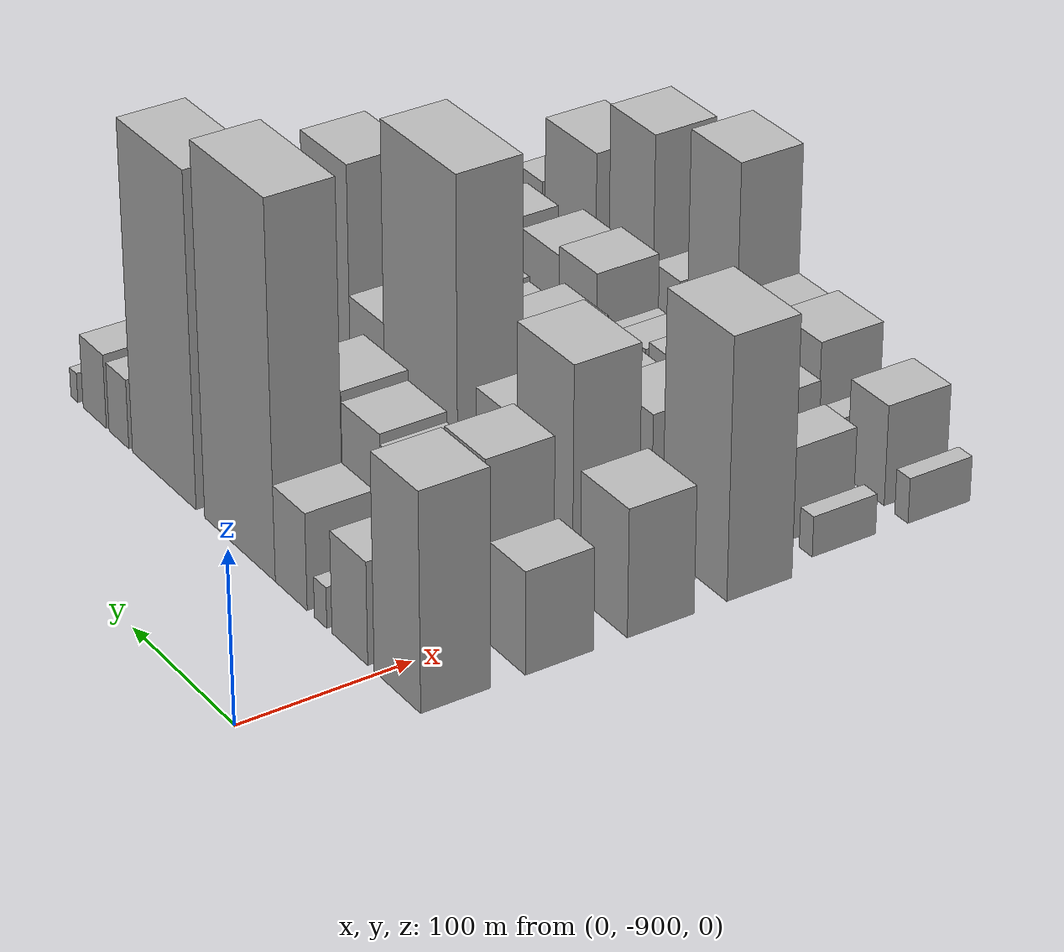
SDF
<sdf version="1.6">
 <world name="default">
  <model name="building_1">
   <static>1</static>
   <pose>100.0000 -918.5534 0 0.000000 0.000000 0.000000</pose>
   <link name="link">
    <pose>0 0 63.00 0 0 0</pose>
    <collision name="collision"><geometry><box><size>40.0000 42.8932 126.0000</size></box></geometry></collision>
    <visual name="visual">
     <cast_shadows>0</cast_shadows>
     <geometry><box><size>40.0000 42.8932 126.0000</size></box></geometry>
     <material>
      <script>
       <uri>model://HANNAS_wall/materials/scripts</uri>
       <uri>model://HANNAS_wall/materials/textures</uri>
       <name>vrc/HANNAS_wall</name>
      </script>
     </material>
    </visual>
   </link>
  </model>
  <model name="building_2">
   <static>1</static>
   <pose>100.0000 -874.1622 0 0.000000 0.000000 0.000000</pose>
   <link name="link">
    <pose>0 0 30.00 0 0 0</pose>
    <collision name="collision"><geometry><box><size>40.0000 33.8893 60.0000</size></box></geometry></collision>
    <visual name="visual">
     <cast_shadows>0</cast_shadows>
     <geometry><box><size>40.0000 33.8893 60.0000</size></box></geometry>
     <material>
      <script>
       <uri>model://HANNAS_wall/materials/scripts</uri>
       <uri>model://HANNAS_wall/materials/textures</uri>
       <name>vrc/HANNAS_wall</name>
      </script>
     </material>
    </visual>
   </link>
  </model>
  <model name="building_3">
   <static>1</static>
   <pose>100.0000 -846.2349 0 0.000000 0.000000 0.000000</pose>
   <link name="link">
    <pose>0 0 12.00 0 0 0</pose>
    <collision name="collision"><geometry><box><size>40.0000 11.9653 24.0000</size></box></geometry></collision>
    <visual name="visual">
     <cast_shadows>0</cast_shadows>
     <geometry><box><size>40.0000 11.9653 24.0000</size></box></geometry>
     <material>
      <script>
       <uri>model://HANNAS_wall/materials/scripts</uri>
       <uri>model://HANNAS_wall/materials/textures</uri>
       <name>vrc/HANNAS_wall</name>
      </script>
     </material>
    </visual>
   </link>
  </model>
  <model name="building_4">
   <static>1</static>
   <pose>100.0000 -817.5872 0 0.000000 0.000000 0.000000</pose>
   <link name="link">
    <pose>0 0 28.50 0 0 0</pose>
    <collision name="collision"><geometry><box><size>40.0000 31.3300 57.0000</size></box></geometry></collision>
    <visual name="visual">
     <cast_shadows>0</cast_shadows>
     <geometry><box><size>40.0000 31.3300 57.0000</size></box></geometry>
     <material>
      <script>
       <uri>model://HANNAS_wall/materials/scripts</uri>
       <uri>model://HANNAS_wall/materials/textures</uri>
       <name>vrc/HANNAS_wall</name>
      </script>
     </material>
    </visual>
   </link>
  </model>
  <model name="building_5">
   <static>1</static>
   <pose>100.0000 -766.0420 0 0.000000 0.000000 0.000000</pose>
   <link name="link">
    <pose>0 0 109.50 0 0 0</pose>
    <collision name="collision"><geometry><box><size>40.0000 71.7605 219.0000</size></box></geometry></collision>
    <visual name="visual">
     <cast_shadows>0</cast_shadows>
     <geometry><box><size>40.0000 71.7605 219.0000</size></box></geometry>
     <material>
      <script>
       <uri>model://HANNAS_wall/materials/scripts</uri>
       <uri>model://HANNAS_wall/materials/textures</uri>
       <name>vrc/HANNAS_wall</name>
      </script>
     </material>
    </visual>
   </link>
  </model>
  <model name="building_6">
   <static>1</static>
   <pose>100.0000 -687.2929 0 0.000000 0.000000 0.000000</pose>
   <link name="link">
    <pose>0 0 99.00 0 0 0</pose>
    <collision name="collision"><geometry><box><size>40.0000 67.7378 198.0000</size></box></geometry></collision>
    <visual name="visual">
     <cast_shadows>0</cast_shadows>
     <geometry><box><size>40.0000 67.7378 198.0000</size></box></geometry>
     <material>
      <script>
       <uri>model://HANNAS_wall/materials/scripts</uri>
       <uri>model://HANNAS_wall/materials/textures</uri>
       <name>vrc/HANNAS_wall</name>
      </script>
     </material>
    </visual>
   </link>
  </model>
  <model name="building_7">
   <static>1</static>
   <pose>100.0000 -638.5477 0 0.000000 0.000000 0.000000</pose>
   <link name="link">
    <pose>0 0 21.00 0 0 0</pose>
    <collision name="collision"><geometry><box><size>40.0000 21.7526 42.0000</size></box></geometry></collision>
    <visual name="visual">
     <cast_shadows>0</cast_shadows>
     <geometry><box><size>40.0000 21.7526 42.0000</size></box></geometry>
     <material>
      <script>
       <uri>model://HANNAS_wall/materials/scripts</uri>
       <uri>model://HANNAS_wall/materials/textures</uri>
       <name>vrc/HANNAS_wall</name>
      </script>
     </material>
    </visual>
   </link>
  </model>
  <model name="building_8">
   <static>1</static>
   <pose>100.0000 -611.7169 0 0.000000 0.000000 0.000000</pose>
   <link name="link">
    <pose>0 0 22.50 0 0 0</pose>
    <collision name="collision"><geometry><box><size>40.0000 25.9090 45.0000</size></box></geometry></collision>
    <visual name="visual">
     <cast_shadows>0</cast_shadows>
     <geometry><box><size>40.0000 25.9090 45.0000</size></box></geometry>
     <material>
      <script>
       <uri>model://HANNAS_wall/materials/scripts</uri>
       <uri>model://HANNAS_wall/materials/textures</uri>
       <name>vrc/HANNAS_wall</name>
      </script>
     </material>
    </visual>
   </link>
  </model>
  <model name="building_9">
   <static>1</static>
   <pose>100.0000 -588.8372 0 0.000000 0.000000 0.000000</pose>
   <link name="link">
    <pose>0 0 9.00 0 0 0</pose>
    <collision name="collision"><geometry><box><size>40.0000 7.8504 18.0000</size></box></geometry></collision>
    <visual name="visual">
     <cast_shadows>0</cast_shadows>
     <geometry><box><size>40.0000 7.8504 18.0000</size></box></geometry>
     <material>
      <script>
       <uri>model://HANNAS_wall/materials/scripts</uri>
       <uri>model://HANNAS_wall/materials/textures</uri>
       <name>vrc/HANNAS_wall</name>
      </script>
     </material>
    </visual>
   </link>
  </model>
  <model name="building_55">
   <static>1</static>
   <pose>160.0000 -924.2510 0 0.000000 0.000000 0.000000</pose>
   <link name="link">
    <pose>0 0 30.00 0 0 0</pose>
    <collision name="collision"><geometry><box><size>40.0000 31.4981 60.0000</size></box></geometry></collision>
    <visual name="visual">
     <cast_shadows>0</cast_shadows>
     <geometry><box><size>40.0000 31.4981 60.0000</size></box></geometry>
     <material>
      <script>
       <uri>model://HANNAS_wall/materials/scripts</uri>
       <uri>model://HANNAS_wall/materials/textures</uri>
       <name>vrc/HANNAS_wall</name>
      </script>
     </material>
    </visual>
   </link>
  </model>
  <model name="building_56">
   <static>1</static>
   <pose>160.0000 -886.0669 0 0.000000 0.000000 0.000000</pose>
   <link name="link">
    <pose>0 0 52.50 0 0 0</pose>
    <collision name="collision"><geometry><box><size>40.0000 36.8700 105.0000</size></box></geometry></collision>
    <visual name="visual">
     <cast_shadows>0</cast_shadows>
     <geometry><box><size>40.0000 36.8700 105.0000</size></box></geometry>
     <material>
      <script>
       <uri>model://HANNAS_wall/materials/scripts</uri>
       <uri>model://HANNAS_wall/materials/textures</uri>
       <name>vrc/HANNAS_wall</name>
      </script>
     </material>
    </visual>
   </link>
  </model>
  <model name="building_57">
   <static>1</static>
   <pose>160.0000 -855.0341 0 0.000000 0.000000 0.000000</pose>
   <link name="link">
    <pose>0 0 24.00 0 0 0</pose>
    <collision name="collision"><geometry><box><size>40.0000 25.1956 48.0000</size></box></geometry></collision>
    <visual name="visual">
     <cast_shadows>0</cast_shadows>
     <geometry><box><size>40.0000 25.1956 48.0000</size></box></geometry>
     <material>
      <script>
       <uri>model://HANNAS_wall/materials/scripts</uri>
       <uri>model://HANNAS_wall/materials/textures</uri>
       <name>vrc/HANNAS_wall</name>
      </script>
     </material>
    </visual>
   </link>
  </model>
  <model name="building_58">
   <static>1</static>
   <pose>160.0000 -824.1396 0 0.000000 0.000000 0.000000</pose>
   <link name="link">
    <pose>0 0 31.50 0 0 0</pose>
    <collision name="collision"><geometry><box><size>40.0000 36.5934 63.0000</size></box></geometry></collision>
    <visual name="visual">
     <cast_shadows>0</cast_shadows>
     <geometry><box><size>40.0000 36.5934 63.0000</size></box></geometry>
     <material>
      <script>
       <uri>model://HANNAS_wall/materials/scripts</uri>
       <uri>model://HANNAS_wall/materials/textures</uri>
       <name>vrc/HANNAS_wall</name>
      </script>
     </material>
    </visual>
   </link>
  </model>
  <model name="building_59">
   <static>1</static>
   <pose>160.0000 -787.1878 0 0.000000 0.000000 0.000000</pose>
   <link name="link">
    <pose>0 0 34.50 0 0 0</pose>
    <collision name="collision"><geometry><box><size>40.0000 37.3101 69.0000</size></box></geometry></collision>
    <visual name="visual">
     <cast_shadows>0</cast_shadows>
     <geometry><box><size>40.0000 37.3101 69.0000</size></box></geometry>
     <material>
      <script>
       <uri>model://HANNAS_wall/materials/scripts</uri>
       <uri>model://HANNAS_wall/materials/textures</uri>
       <name>vrc/HANNAS_wall</name>
      </script>
     </material>
    </visual>
   </link>
  </model>
  <model name="building_60">
   <static>1</static>
   <pose>160.0000 -746.8631 0 0.000000 0.000000 0.000000</pose>
   <link name="link">
    <pose>0 0 37.50 0 0 0</pose>
    <collision name="collision"><geometry><box><size>40.0000 43.3393 75.0000</size></box></geometry></collision>
    <visual name="visual">
     <cast_shadows>0</cast_shadows>
     <geometry><box><size>40.0000 43.3393 75.0000</size></box></geometry>
     <material>
      <script>
       <uri>model://HANNAS_wall/materials/scripts</uri>
       <uri>model://HANNAS_wall/materials/textures</uri>
       <name>vrc/HANNAS_wall</name>
      </script>
     </material>
    </visual>
   </link>
  </model>
  <model name="building_61">
   <static>1</static>
   <pose>160.0000 -710.0617 0 0.000000 0.000000 0.000000</pose>
   <link name="link">
    <pose>0 0 25.50 0 0 0</pose>
    <collision name="collision"><geometry><box><size>40.0000 30.2634 51.0000</size></box></geometry></collision>
    <visual name="visual">
     <cast_shadows>0</cast_shadows>
     <geometry><box><size>40.0000 30.2634 51.0000</size></box></geometry>
     <material>
      <script>
       <uri>model://HANNAS_wall/materials/scripts</uri>
       <uri>model://HANNAS_wall/materials/textures</uri>
       <name>vrc/HANNAS_wall</name>
      </script>
     </material>
    </visual>
   </link>
  </model>
  <model name="building_62">
   <static>1</static>
   <pose>160.0000 -678.1317 0 0.000000 0.000000 0.000000</pose>
   <link name="link">
    <pose>0 0 28.50 0 0 0</pose>
    <collision name="collision"><geometry><box><size>40.0000 33.5968 57.0000</size></box></geometry></collision>
    <visual name="visual">
     <cast_shadows>0</cast_shadows>
     <geometry><box><size>40.0000 33.5968 57.0000</size></box></geometry>
     <material>
      <script>
       <uri>model://HANNAS_wall/materials/scripts</uri>
       <uri>model://HANNAS_wall/materials/textures</uri>
       <name>vrc/HANNAS_wall</name>
      </script>
     </material>
    </visual>
   </link>
  </model>
  <model name="building_63">
   <static>1</static>
   <pose>160.0000 -658.0285 0 0.000000 0.000000 0.000000</pose>
   <link name="link">
    <pose>0 0 7.50 0 0 0</pose>
    <collision name="collision"><geometry><box><size>40.0000 6.6095 15.0000</size></box></geometry></collision>
    <visual name="visual">
     <cast_shadows>0</cast_shadows>
     <geometry><box><size>40.0000 6.6095 15.0000</size></box></geometry>
     <material>
      <script>
       <uri>model://HANNAS_wall/materials/scripts</uri>
       <uri>model://HANNAS_wall/materials/textures</uri>
       <name>vrc/HANNAS_wall</name>
      </script>
     </material>
    </visual>
   </link>
  </model>
  <model name="building_64">
   <static>1</static>
   <pose>160.0000 -644.5541 0 0.000000 0.000000 0.000000</pose>
   <link name="link">
    <pose>0 0 18.00 0 0 0</pose>
    <collision name="collision"><geometry><box><size>40.0000 20.3393 36.0000</size></box></geometry></collision>
    <visual name="visual">
     <cast_shadows>0</cast_shadows>
     <geometry><box><size>40.0000 20.3393 36.0000</size></box></geometry>
     <material>
      <script>
       <uri>model://HANNAS_wall/materials/scripts</uri>
       <uri>model://HANNAS_wall/materials/textures</uri>
       <name>vrc/HANNAS_wall</name>
      </script>
     </material>
    </visual>
   </link>
  </model>
  <model name="building_65">
   <static>1</static>
   <pose>160.0000 -616.4208 0 0.000000 0.000000 0.000000</pose>
   <link name="link">
    <pose>0 0 33.00 0 0 0</pose>
    <collision name="collision"><geometry><box><size>40.0000 35.9275 66.0000</size></box></geometry></collision>
    <visual name="visual">
     <cast_shadows>0</cast_shadows>
     <geometry><box><size>40.0000 35.9275 66.0000</size></box></geometry>
     <material>
      <script>
       <uri>model://HANNAS_wall/materials/scripts</uri>
       <uri>model://HANNAS_wall/materials/textures</uri>
       <name>vrc/HANNAS_wall</name>
      </script>
     </material>
    </visual>
   </link>
  </model>
  <model name="building_66">
   <static>1</static>
   <pose>160.0000 -578.4896 0 0.000000 0.000000 0.000000</pose>
   <link name="link">
    <pose>0 0 37.50 0 0 0</pose>
    <collision name="collision"><geometry><box><size>40.0000 39.9348 75.0000</size></box></geometry></collision>
    <visual name="visual">
     <cast_shadows>0</cast_shadows>
     <geometry><box><size>40.0000 39.9348 75.0000</size></box></geometry>
     <material>
      <script>
       <uri>model://HANNAS_wall/materials/scripts</uri>
       <uri>model://HANNAS_wall/materials/textures</uri>
       <name>vrc/HANNAS_wall</name>
      </script>
     </material>
    </visual>
   </link>
  </model>
  <model name="building_110">
   <static>1</static>
   <pose>220.0000 -918.9991 0 0.000000 0.000000 0.000000</pose>
   <link name="link">
    <pose>0 0 37.50 0 0 0</pose>
    <collision name="collision"><geometry><box><size>40.0000 42.0018 75.0000</size></box></geometry></collision>
    <visual name="visual">
     <cast_shadows>0</cast_shadows>
     <geometry><box><size>40.0000 42.0018 75.0000</size></box></geometry>
     <material>
      <script>
       <uri>model://HANNAS_wall/materials/scripts</uri>
       <uri>model://HANNAS_wall/materials/textures</uri>
       <name>vrc/HANNAS_wall</name>
      </script>
     </material>
    </visual>
   </link>
  </model>
  <model name="building_111">
   <static>1</static>
   <pose>220.0000 -865.5196 0 0.000000 0.000000 0.000000</pose>
   <link name="link">
    <pose>0 0 66.00 0 0 0</pose>
    <collision name="collision"><geometry><box><size>40.0000 50.9571 132.0000</size></box></geometry></collision>
    <visual name="visual">
     <cast_shadows>0</cast_shadows>
     <geometry><box><size>40.0000 50.9571 132.0000</size></box></geometry>
     <material>
      <script>
       <uri>model://HANNAS_wall/materials/scripts</uri>
       <uri>model://HANNAS_wall/materials/textures</uri>
       <name>vrc/HANNAS_wall</name>
      </script>
     </material>
    </visual>
   </link>
  </model>
  <model name="building_112">
   <static>1</static>
   <pose>220.0000 -820.8503 0 0.000000 0.000000 0.000000</pose>
   <link name="link">
    <pose>0 0 37.50 0 0 0</pose>
    <collision name="collision"><geometry><box><size>40.0000 38.3815 75.0000</size></box></geometry></collision>
    <visual name="visual">
     <cast_shadows>0</cast_shadows>
     <geometry><box><size>40.0000 38.3815 75.0000</size></box></geometry>
     <material>
      <script>
       <uri>model://HANNAS_wall/materials/scripts</uri>
       <uri>model://HANNAS_wall/materials/textures</uri>
       <name>vrc/HANNAS_wall</name>
      </script>
     </material>
    </visual>
   </link>
  </model>
  <model name="building_113">
   <static>1</static>
   <pose>220.0000 -792.7535 0 0.000000 0.000000 0.000000</pose>
   <link name="link">
    <pose>0 0 15.00 0 0 0</pose>
    <collision name="collision"><geometry><box><size>40.0000 17.8122 30.0000</size></box></geometry></collision>
    <visual name="visual">
     <cast_shadows>0</cast_shadows>
     <geometry><box><size>40.0000 17.8122 30.0000</size></box></geometry>
     <material>
      <script>
       <uri>model://HANNAS_wall/materials/scripts</uri>
       <uri>model://HANNAS_wall/materials/textures</uri>
       <name>vrc/HANNAS_wall</name>
      </script>
     </material>
    </visual>
   </link>
  </model>
  <model name="building_114">
   <static>1</static>
   <pose>220.0000 -747.9325 0 0.000000 0.000000 0.000000</pose>
   <link name="link">
    <pose>0 0 94.50 0 0 0</pose>
    <collision name="collision"><geometry><box><size>40.0000 71.8297 189.0000</size></box></geometry></collision>
    <visual name="visual">
     <cast_shadows>0</cast_shadows>
     <geometry><box><size>40.0000 71.8297 189.0000</size></box></geometry>
     <material>
      <script>
       <uri>model://HANNAS_wall/materials/scripts</uri>
       <uri>model://HANNAS_wall/materials/textures</uri>
       <name>vrc/HANNAS_wall</name>
      </script>
     </material>
    </visual>
   </link>
  </model>
  <model name="building_115">
   <static>1</static>
   <pose>220.0000 -694.6104 0 0.000000 0.000000 0.000000</pose>
   <link name="link">
    <pose>0 0 34.50 0 0 0</pose>
    <collision name="collision"><geometry><box><size>40.0000 34.8145 69.0000</size></box></geometry></collision>
    <visual name="visual">
     <cast_shadows>0</cast_shadows>
     <geometry><box><size>40.0000 34.8145 69.0000</size></box></geometry>
     <material>
      <script>
       <uri>model://HANNAS_wall/materials/scripts</uri>
       <uri>model://HANNAS_wall/materials/textures</uri>
       <name>vrc/HANNAS_wall</name>
      </script>
     </material>
    </visual>
   </link>
  </model>
  <model name="building_116">
   <static>1</static>
   <pose>220.0000 -653.7640 0 0.000000 0.000000 0.000000</pose>
   <link name="link">
    <pose>0 0 73.50 0 0 0</pose>
    <collision name="collision"><geometry><box><size>40.0000 46.8782 147.0000</size></box></geometry></collision>
    <visual name="visual">
     <cast_shadows>0</cast_shadows>
     <geometry><box><size>40.0000 46.8782 147.0000</size></box></geometry>
     <material>
      <script>
       <uri>model://HANNAS_wall/materials/scripts</uri>
       <uri>model://HANNAS_wall/materials/textures</uri>
       <name>vrc/HANNAS_wall</name>
      </script>
     </material>
    </visual>
   </link>
  </model>
  <model name="building_117">
   <static>1</static>
   <pose>220.0000 -614.5843 0 0.000000 0.000000 0.000000</pose>
   <link name="link">
    <pose>0 0 46.50 0 0 0</pose>
    <collision name="collision"><geometry><box><size>40.0000 31.4812 93.0000</size></box></geometry></collision>
    <visual name="visual">
     <cast_shadows>0</cast_shadows>
     <geometry><box><size>40.0000 31.4812 93.0000</size></box></geometry>
     <material>
      <script>
       <uri>model://HANNAS_wall/materials/scripts</uri>
       <uri>model://HANNAS_wall/materials/textures</uri>
       <name>vrc/HANNAS_wall</name>
      </script>
     </material>
    </visual>
   </link>
  </model>
  <model name="building_118">
   <static>1</static>
   <pose>220.0000 -582.8374 0 0.000000 0.000000 0.000000</pose>
   <link name="link">
    <pose>0 0 28.50 0 0 0</pose>
    <collision name="collision"><geometry><box><size>40.0000 32.0126 57.0000</size></box></geometry></collision>
    <visual name="visual">
     <cast_shadows>0</cast_shadows>
     <geometry><box><size>40.0000 32.0126 57.0000</size></box></geometry>
     <material>
      <script>
       <uri>model://HANNAS_wall/materials/scripts</uri>
       <uri>model://HANNAS_wall/materials/textures</uri>
       <name>vrc/HANNAS_wall</name>
      </script>
     </material>
    </visual>
   </link>
  </model>
  <model name="building_162">
   <static>1</static>
   <pose>280.0000 -911.5592 0 0.000000 0.000000 0.000000</pose>
   <link name="link">
    <pose>0 0 76.50 0 0 0</pose>
    <collision name="collision"><geometry><box><size>40.0000 56.8816 153.0000</size></box></geometry></collision>
    <visual name="visual">
     <cast_shadows>0</cast_shadows>
     <geometry><box><size>40.0000 56.8816 153.0000</size></box></geometry>
     <material>
      <script>
       <uri>model://HANNAS_wall/materials/scripts</uri>
       <uri>model://HANNAS_wall/materials/textures</uri>
       <name>vrc/HANNAS_wall</name>
      </script>
     </material>
    </visual>
   </link>
  </model>
  <model name="building_163">
   <static>1</static>
   <pose>280.0000 -852.0050 0 0.000000 0.000000 0.000000</pose>
   <link name="link">
    <pose>0 0 37.50 0 0 0</pose>
    <collision name="collision"><geometry><box><size>40.0000 42.2267 75.0000</size></box></geometry></collision>
    <visual name="visual">
     <cast_shadows>0</cast_shadows>
     <geometry><box><size>40.0000 42.2267 75.0000</size></box></geometry>
     <material>
      <script>
       <uri>model://HANNAS_wall/materials/scripts</uri>
       <uri>model://HANNAS_wall/materials/textures</uri>
       <name>vrc/HANNAS_wall</name>
      </script>
     </material>
    </visual>
   </link>
  </model>
  <model name="building_164">
   <static>1</static>
   <pose>280.0000 -809.9561 0 0.000000 0.000000 0.000000</pose>
   <link name="link">
    <pose>0 0 33.00 0 0 0</pose>
    <collision name="collision"><geometry><box><size>40.0000 33.8712 66.0000</size></box></geometry></collision>
    <visual name="visual">
     <cast_shadows>0</cast_shadows>
     <geometry><box><size>40.0000 33.8712 66.0000</size></box></geometry>
     <material>
      <script>
       <uri>model://HANNAS_wall/materials/scripts</uri>
       <uri>model://HANNAS_wall/materials/textures</uri>
       <name>vrc/HANNAS_wall</name>
      </script>
     </material>
    </visual>
   </link>
  </model>
  <model name="building_165">
   <static>1</static>
   <pose>280.0000 -789.2105 0 0.000000 0.000000 0.000000</pose>
   <link name="link">
    <pose>0 0 9.00 0 0 0</pose>
    <collision name="collision"><geometry><box><size>40.0000 7.6199 18.0000</size></box></geometry></collision>
    <visual name="visual">
     <cast_shadows>0</cast_shadows>
     <geometry><box><size>40.0000 7.6199 18.0000</size></box></geometry>
     <material>
      <script>
       <uri>model://HANNAS_wall/materials/scripts</uri>
       <uri>model://HANNAS_wall/materials/textures</uri>
       <name>vrc/HANNAS_wall</name>
      </script>
     </material>
    </visual>
   </link>
  </model>
  <model name="building_166">
   <static>1</static>
   <pose>280.0000 -779.4388 0 0.000000 0.000000 0.000000</pose>
   <link name="link">
    <pose>0 0 12.00 0 0 0</pose>
    <collision name="collision"><geometry><box><size>40.0000 11.9234 24.0000</size></box></geometry></collision>
    <visual name="visual">
     <cast_shadows>0</cast_shadows>
     <geometry><box><size>40.0000 11.9234 24.0000</size></box></geometry>
     <material>
      <script>
       <uri>model://HANNAS_wall/materials/scripts</uri>
       <uri>model://HANNAS_wall/materials/textures</uri>
       <name>vrc/HANNAS_wall</name>
      </script>
     </material>
    </visual>
   </link>
  </model>
  <model name="building_167">
   <static>1</static>
   <pose>280.0000 -752.8096 0 0.000000 0.000000 0.000000</pose>
   <link name="link">
    <pose>0 0 36.00 0 0 0</pose>
    <collision name="collision"><geometry><box><size>40.0000 41.3351 72.0000</size></box></geometry></collision>
    <visual name="visual">
     <cast_shadows>0</cast_shadows>
     <geometry><box><size>40.0000 41.3351 72.0000</size></box></geometry>
     <material>
      <script>
       <uri>model://HANNAS_wall/materials/scripts</uri>
       <uri>model://HANNAS_wall/materials/textures</uri>
       <name>vrc/HANNAS_wall</name>
      </script>
     </material>
    </visual>
   </link>
  </model>
  <model name="building_168">
   <static>1</static>
   <pose>280.0000 -715.1291 0 0.000000 0.000000 0.000000</pose>
   <link name="link">
    <pose>0 0 28.50 0 0 0</pose>
    <collision name="collision"><geometry><box><size>40.0000 34.0257 57.0000</size></box></geometry></collision>
    <visual name="visual">
     <cast_shadows>0</cast_shadows>
     <geometry><box><size>40.0000 34.0257 57.0000</size></box></geometry>
     <material>
      <script>
       <uri>model://HANNAS_wall/materials/scripts</uri>
       <uri>model://HANNAS_wall/materials/textures</uri>
       <name>vrc/HANNAS_wall</name>
      </script>
     </material>
    </visual>
   </link>
  </model>
  <model name="building_169">
   <static>1</static>
   <pose>280.0000 -681.9073 0 0.000000 0.000000 0.000000</pose>
   <link name="link">
    <pose>0 0 30.00 0 0 0</pose>
    <collision name="collision"><geometry><box><size>40.0000 32.4180 60.0000</size></box></geometry></collision>
    <visual name="visual">
     <cast_shadows>0</cast_shadows>
     <geometry><box><size>40.0000 32.4180 60.0000</size></box></geometry>
     <material>
      <script>
       <uri>model://HANNAS_wall/materials/scripts</uri>
       <uri>model://HANNAS_wall/materials/textures</uri>
       <name>vrc/HANNAS_wall</name>
      </script>
     </material>
    </visual>
   </link>
  </model>
  <model name="building_170">
   <static>1</static>
   <pose>280.0000 -651.9867 0 0.000000 0.000000 0.000000</pose>
   <link name="link">
    <pose>0 0 16.50 0 0 0</pose>
    <collision name="collision"><geometry><box><size>40.0000 17.4232 33.0000</size></box></geometry></collision>
    <visual name="visual">
     <cast_shadows>0</cast_shadows>
     <geometry><box><size>40.0000 17.4232 33.0000</size></box></geometry>
     <material>
      <script>
       <uri>model://HANNAS_wall/materials/scripts</uri>
       <uri>model://HANNAS_wall/materials/textures</uri>
       <name>vrc/HANNAS_wall</name>
      </script>
     </material>
    </visual>
   </link>
  </model>
  <model name="building_171">
   <static>1</static>
   <pose>280.0000 -618.9489 0 0.000000 0.000000 0.000000</pose>
   <link name="link">
    <pose>0 0 43.50 0 0 0</pose>
    <collision name="collision"><geometry><box><size>40.0000 48.6523 87.0000</size></box></geometry></collision>
    <visual name="visual">
     <cast_shadows>0</cast_shadows>
     <geometry><box><size>40.0000 48.6523 87.0000</size></box></geometry>
     <material>
      <script>
       <uri>model://HANNAS_wall/materials/scripts</uri>
       <uri>model://HANNAS_wall/materials/textures</uri>
       <name>vrc/HANNAS_wall</name>
      </script>
     </material>
    </visual>
   </link>
  </model>
  <model name="building_172">
   <static>1</static>
   <pose>280.0000 -571.3221 0 0.000000 0.000000 0.000000</pose>
   <link name="link">
    <pose>0 0 43.50 0 0 0</pose>
    <collision name="collision"><geometry><box><size>40.0000 46.6013 87.0000</size></box></geometry></collision>
    <visual name="visual">
     <cast_shadows>0</cast_shadows>
     <geometry><box><size>40.0000 46.6013 87.0000</size></box></geometry>
     <material>
      <script>
       <uri>model://HANNAS_wall/materials/scripts</uri>
       <uri>model://HANNAS_wall/materials/textures</uri>
       <name>vrc/HANNAS_wall</name>
      </script>
     </material>
    </visual>
   </link>
  </model>
  <model name="building_218">
   <static>1</static>
   <pose>340.0000 -924.4273 0 0.000000 0.000000 0.000000</pose>
   <link name="link">
    <pose>0 0 12.00 0 0 0</pose>
    <collision name="collision"><geometry><box><size>40.0000 11.1454 24.0000</size></box></geometry></collision>
    <visual name="visual">
     <cast_shadows>0</cast_shadows>
     <geometry><box><size>40.0000 11.1454 24.0000</size></box></geometry>
     <material>
      <script>
       <uri>model://HANNAS_wall/materials/scripts</uri>
       <uri>model://HANNAS_wall/materials/textures</uri>
       <name>vrc/HANNAS_wall</name>
      </script>
     </material>
    </visual>
   </link>
  </model>
  <model name="building_219">
   <static>1</static>
   <pose>340.0000 -897.1703 0 0.000000 0.000000 0.000000</pose>
   <link name="link">
    <pose>0 0 27.00 0 0 0</pose>
    <collision name="collision"><geometry><box><size>40.0000 27.3688 54.0000</size></box></geometry></collision>
    <visual name="visual">
     <cast_shadows>0</cast_shadows>
     <geometry><box><size>40.0000 27.3688 54.0000</size></box></geometry>
     <material>
      <script>
       <uri>model://HANNAS_wall/materials/scripts</uri>
       <uri>model://HANNAS_wall/materials/textures</uri>
       <name>vrc/HANNAS_wall</name>
      </script>
     </material>
    </visual>
   </link>
  </model>
  <model name="building_220">
   <static>1</static>
   <pose>340.0000 -862.6536 0 0.000000 0.000000 0.000000</pose>
   <link name="link">
    <pose>0 0 33.00 0 0 0</pose>
    <collision name="collision"><geometry><box><size>40.0000 33.6646 66.0000</size></box></geometry></collision>
    <visual name="visual">
     <cast_shadows>0</cast_shadows>
     <geometry><box><size>40.0000 33.6646 66.0000</size></box></geometry>
     <material>
      <script>
       <uri>model://HANNAS_wall/materials/scripts</uri>
       <uri>model://HANNAS_wall/materials/textures</uri>
       <name>vrc/HANNAS_wall</name>
      </script>
     </material>
    </visual>
   </link>
  </model>
  <model name="building_221">
   <static>1</static>
   <pose>340.0000 -825.8177 0 0.000000 0.000000 0.000000</pose>
   <link name="link">
    <pose>0 0 25.50 0 0 0</pose>
    <collision name="collision"><geometry><box><size>40.0000 30.0071 51.0000</size></box></geometry></collision>
    <visual name="visual">
     <cast_shadows>0</cast_shadows>
     <geometry><box><size>40.0000 30.0071 51.0000</size></box></geometry>
     <material>
      <script>
       <uri>model://HANNAS_wall/materials/scripts</uri>
       <uri>model://HANNAS_wall/materials/textures</uri>
       <name>vrc/HANNAS_wall</name>
      </script>
     </material>
    </visual>
   </link>
  </model>
  <model name="building_222">
   <static>1</static>
   <pose>340.0000 -796.5518 0 0.000000 0.000000 0.000000</pose>
   <link name="link">
    <pose>0 0 27.00 0 0 0</pose>
    <collision name="collision"><geometry><box><size>40.0000 28.5247 54.0000</size></box></geometry></collision>
    <visual name="visual">
     <cast_shadows>0</cast_shadows>
     <geometry><box><size>40.0000 28.5247 54.0000</size></box></geometry>
     <material>
      <script>
       <uri>model://HANNAS_wall/materials/scripts</uri>
       <uri>model://HANNAS_wall/materials/textures</uri>
       <name>vrc/HANNAS_wall</name>
      </script>
     </material>
    </visual>
   </link>
  </model>
  <model name="building_223">
   <static>1</static>
   <pose>340.0000 -766.5772 0 0.000000 0.000000 0.000000</pose>
   <link name="link">
    <pose>0 0 24.00 0 0 0</pose>
    <collision name="collision"><geometry><box><size>40.0000 25.4247 48.0000</size></box></geometry></collision>
    <visual name="visual">
     <cast_shadows>0</cast_shadows>
     <geometry><box><size>40.0000 25.4247 48.0000</size></box></geometry>
     <material>
      <script>
       <uri>model://HANNAS_wall/materials/scripts</uri>
       <uri>model://HANNAS_wall/materials/textures</uri>
       <name>vrc/HANNAS_wall</name>
      </script>
     </material>
    </visual>
   </link>
  </model>
  <model name="building_224">
   <static>1</static>
   <pose>340.0000 -743.5439 0 0.000000 0.000000 0.000000</pose>
   <link name="link">
    <pose>0 0 19.50 0 0 0</pose>
    <collision name="collision"><geometry><box><size>40.0000 20.6418 39.0000</size></box></geometry></collision>
    <visual name="visual">
     <cast_shadows>0</cast_shadows>
     <geometry><box><size>40.0000 20.6418 39.0000</size></box></geometry>
     <material>
      <script>
       <uri>model://HANNAS_wall/materials/scripts</uri>
       <uri>model://HANNAS_wall/materials/textures</uri>
       <name>vrc/HANNAS_wall</name>
      </script>
     </material>
    </visual>
   </link>
  </model>
  <model name="building_225">
   <static>1</static>
   <pose>340.0000 -715.1271 0 0.000000 0.000000 0.000000</pose>
   <link name="link">
    <pose>0 0 36.00 0 0 0</pose>
    <collision name="collision"><geometry><box><size>40.0000 36.1919 72.0000</size></box></geometry></collision>
    <visual name="visual">
     <cast_shadows>0</cast_shadows>
     <geometry><box><size>40.0000 36.1919 72.0000</size></box></geometry>
     <material>
      <script>
       <uri>model://HANNAS_wall/materials/scripts</uri>
       <uri>model://HANNAS_wall/materials/textures</uri>
       <name>vrc/HANNAS_wall</name>
      </script>
     </material>
    </visual>
   </link>
  </model>
  <model name="building_226">
   <static>1</static>
   <pose>340.0000 -678.5172 0 0.000000 0.000000 0.000000</pose>
   <link name="link">
    <pose>0 0 33.00 0 0 0</pose>
    <collision name="collision"><geometry><box><size>40.0000 37.0279 66.0000</size></box></geometry></collision>
    <visual name="visual">
     <cast_shadows>0</cast_shadows>
     <geometry><box><size>40.0000 37.0279 66.0000</size></box></geometry>
     <material>
      <script>
       <uri>model://HANNAS_wall/materials/scripts</uri>
       <uri>model://HANNAS_wall/materials/textures</uri>
       <name>vrc/HANNAS_wall</name>
      </script>
     </material>
    </visual>
   </link>
  </model>
  <model name="building_227">
   <static>1</static>
   <pose>340.0000 -650.6939 0 0.000000 0.000000 0.000000</pose>
   <link name="link">
    <pose>0 0 16.50 0 0 0</pose>
    <collision name="collision"><geometry><box><size>40.0000 18.6186 33.0000</size></box></geometry></collision>
    <visual name="visual">
     <cast_shadows>0</cast_shadows>
     <geometry><box><size>40.0000 18.6186 33.0000</size></box></geometry>
     <material>
      <script>
       <uri>model://HANNAS_wall/materials/scripts</uri>
       <uri>model://HANNAS_wall/materials/textures</uri>
       <name>vrc/HANNAS_wall</name>
      </script>
     </material>
    </visual>
   </link>
  </model>
  <model name="building_228">
   <static>1</static>
   <pose>340.0000 -619.4333 0 0.000000 0.000000 0.000000</pose>
   <link name="link">
    <pose>0 0 28.50 0 0 0</pose>
    <collision name="collision"><geometry><box><size>40.0000 31.9028 57.0000</size></box></geometry></collision>
    <visual name="visual">
     <cast_shadows>0</cast_shadows>
     <geometry><box><size>40.0000 31.9028 57.0000</size></box></geometry>
     <material>
      <script>
       <uri>model://HANNAS_wall/materials/scripts</uri>
       <uri>model://HANNAS_wall/materials/textures</uri>
       <name>vrc/HANNAS_wall</name>
      </script>
     </material>
    </visual>
   </link>
  </model>
  <model name="building_229">
   <static>1</static>
   <pose>340.0000 -590.0959 0 0.000000 0.000000 0.000000</pose>
   <link name="link">
    <pose>0 0 25.50 0 0 0</pose>
    <collision name="collision"><geometry><box><size>40.0000 26.7720 51.0000</size></box></geometry></collision>
    <visual name="visual">
     <cast_shadows>0</cast_shadows>
     <geometry><box><size>40.0000 26.7720 51.0000</size></box></geometry>
     <material>
      <script>
       <uri>model://HANNAS_wall/materials/scripts</uri>
       <uri>model://HANNAS_wall/materials/textures</uri>
       <name>vrc/HANNAS_wall</name>
      </script>
     </material>
    </visual>
   </link>
  </model>
  <model name="building_230">
   <static>1</static>
   <pose>340.0000 -564.9017 0 0.000000 0.000000 0.000000</pose>
   <link name="link">
    <pose>0 0 16.50 0 0 0</pose>
    <collision name="collision"><geometry><box><size>40.0000 17.6162 33.0000</size></box></geometry></collision>
    <visual name="visual">
     <cast_shadows>0</cast_shadows>
     <geometry><box><size>40.0000 17.6162 33.0000</size></box></geometry>
     <material>
      <script>
       <uri>model://HANNAS_wall/materials/scripts</uri>
       <uri>model://HANNAS_wall/materials/textures</uri>
       <name>vrc/HANNAS_wall</name>
      </script>
     </material>
    </visual>
   </link>
  </model>
  <model name="building_273">
   <static>1</static>
   <pose>400.0000 -925.3662 0 0.000000 0.000000 0.000000</pose>
   <link name="link">
    <pose>0 0 13.50 0 0 0</pose>
    <collision name="collision"><geometry><box><size>40.0000 11.2677 27.0000</size></box></geometry></collision>
    <visual name="visual">
     <cast_shadows>0</cast_shadows>
     <geometry><box><size>40.0000 11.2677 27.0000</size></box></geometry>
     <material>
      <script>
       <uri>model://HANNAS_wall/materials/scripts</uri>
       <uri>model://HANNAS_wall/materials/textures</uri>
       <name>vrc/HANNAS_wall</name>
      </script>
     </material>
    </visual>
   </link>
  </model>
  <model name="building_274">
   <static>1</static>
   <pose>400.0000 -894.6875 0 0.000000 0.000000 0.000000</pose>
   <link name="link">
    <pose>0 0 30.00 0 0 0</pose>
    <collision name="collision"><geometry><box><size>40.0000 32.0897 60.0000</size></box></geometry></collision>
    <visual name="visual">
     <cast_shadows>0</cast_shadows>
     <geometry><box><size>40.0000 32.0897 60.0000</size></box></geometry>
     <material>
      <script>
       <uri>model://HANNAS_wall/materials/scripts</uri>
       <uri>model://HANNAS_wall/materials/textures</uri>
       <name>vrc/HANNAS_wall</name>
      </script>
     </material>
    </visual>
   </link>
  </model>
  <model name="building_275">
   <static>1</static>
   <pose>400.0000 -860.5113 0 0.000000 0.000000 0.000000</pose>
   <link name="link">
    <pose>0 0 15.00 0 0 0</pose>
    <collision name="collision"><geometry><box><size>40.0000 16.2627 30.0000</size></box></geometry></collision>
    <visual name="visual">
     <cast_shadows>0</cast_shadows>
     <geometry><box><size>40.0000 16.2627 30.0000</size></box></geometry>
     <material>
      <script>
       <uri>model://HANNAS_wall/materials/scripts</uri>
       <uri>model://HANNAS_wall/materials/textures</uri>
       <name>vrc/HANNAS_wall</name>
      </script>
     </material>
    </visual>
   </link>
  </model>
  <model name="building_276">
   <static>1</static>
   <pose>400.0000 -832.5133 0 0.000000 0.000000 0.000000</pose>
   <link name="link">
    <pose>0 0 34.50 0 0 0</pose>
    <collision name="collision"><geometry><box><size>40.0000 39.7332 69.0000</size></box></geometry></collision>
    <visual name="visual">
     <cast_shadows>0</cast_shadows>
     <geometry><box><size>40.0000 39.7332 69.0000</size></box></geometry>
     <material>
      <script>
       <uri>model://HANNAS_wall/materials/scripts</uri>
       <uri>model://HANNAS_wall/materials/textures</uri>
       <name>vrc/HANNAS_wall</name>
      </script>
     </material>
    </visual>
   </link>
  </model>
  <model name="building_277">
   <static>1</static>
   <pose>400.0000 -793.6750 0 0.000000 0.000000 0.000000</pose>
   <link name="link">
    <pose>0 0 31.50 0 0 0</pose>
    <collision name="collision"><geometry><box><size>40.0000 31.9435 63.0000</size></box></geometry></collision>
    <visual name="visual">
     <cast_shadows>0</cast_shadows>
     <geometry><box><size>40.0000 31.9435 63.0000</size></box></geometry>
     <material>
      <script>
       <uri>model://HANNAS_wall/materials/scripts</uri>
       <uri>model://HANNAS_wall/materials/textures</uri>
       <name>vrc/HANNAS_wall</name>
      </script>
     </material>
    </visual>
   </link>
  </model>
  <model name="building_278">
   <static>1</static>
   <pose>400.0000 -754.8330 0 0.000000 0.000000 0.000000</pose>
   <link name="link">
    <pose>0 0 70.50 0 0 0</pose>
    <collision name="collision"><geometry><box><size>40.0000 45.7405 141.0000</size></box></geometry></collision>
    <visual name="visual">
     <cast_shadows>0</cast_shadows>
     <geometry><box><size>40.0000 45.7405 141.0000</size></box></geometry>
     <material>
      <script>
       <uri>model://HANNAS_wall/materials/scripts</uri>
       <uri>model://HANNAS_wall/materials/textures</uri>
       <name>vrc/HANNAS_wall</name>
      </script>
     </material>
    </visual>
   </link>
  </model>
  <model name="building_279">
   <static>1</static>
   <pose>400.0000 -712.0625 0 0.000000 0.000000 0.000000</pose>
   <link name="link">
    <pose>0 0 22.50 0 0 0</pose>
    <collision name="collision"><geometry><box><size>40.0000 25.8006 45.0000</size></box></geometry></collision>
    <visual name="visual">
     <cast_shadows>0</cast_shadows>
     <geometry><box><size>40.0000 25.8006 45.0000</size></box></geometry>
     <material>
      <script>
       <uri>model://HANNAS_wall/materials/scripts</uri>
       <uri>model://HANNAS_wall/materials/textures</uri>
       <name>vrc/HANNAS_wall</name>
      </script>
     </material>
    </visual>
   </link>
  </model>
  <model name="building_280">
   <static>1</static>
   <pose>400.0000 -677.6246 0 0.000000 0.000000 0.000000</pose>
   <link name="link">
    <pose>0 0 61.50 0 0 0</pose>
    <collision name="collision"><geometry><box><size>40.0000 43.0750 123.0000</size></box></geometry></collision>
    <visual name="visual">
     <cast_shadows>0</cast_shadows>
     <geometry><box><size>40.0000 43.0750 123.0000</size></box></geometry>
     <material>
      <script>
       <uri>model://HANNAS_wall/materials/scripts</uri>
       <uri>model://HANNAS_wall/materials/textures</uri>
       <name>vrc/HANNAS_wall</name>
      </script>
     </material>
    </visual>
   </link>
  </model>
  <model name="building_281">
   <static>1</static>
   <pose>400.0000 -649.6019 0 0.000000 0.000000 0.000000</pose>
   <link name="link">
    <pose>0 0 13.50 0 0 0</pose>
    <collision name="collision"><geometry><box><size>40.0000 12.9705 27.0000</size></box></geometry></collision>
    <visual name="visual">
     <cast_shadows>0</cast_shadows>
     <geometry><box><size>40.0000 12.9705 27.0000</size></box></geometry>
     <material>
      <script>
       <uri>model://HANNAS_wall/materials/scripts</uri>
       <uri>model://HANNAS_wall/materials/textures</uri>
       <name>vrc/HANNAS_wall</name>
      </script>
     </material>
    </visual>
   </link>
  </model>
  <model name="building_282">
   <static>1</static>
   <pose>400.0000 -617.4389 0 0.000000 0.000000 0.000000</pose>
   <link name="link">
    <pose>0 0 43.50 0 0 0</pose>
    <collision name="collision"><geometry><box><size>40.0000 51.3554 87.0000</size></box></geometry></collision>
    <visual name="visual">
     <cast_shadows>0</cast_shadows>
     <geometry><box><size>40.0000 51.3554 87.0000</size></box></geometry>
     <material>
      <script>
       <uri>model://HANNAS_wall/materials/scripts</uri>
       <uri>model://HANNAS_wall/materials/textures</uri>
       <name>vrc/HANNAS_wall</name>
      </script>
     </material>
    </visual>
   </link>
  </model>
  <model name="building_283">
   <static>1</static>
   <pose>400.0000 -575.8607 0 0.000000 0.000000 0.000000</pose>
   <link name="link">
    <pose>0 0 22.50 0 0 0</pose>
    <collision name="collision"><geometry><box><size>40.0000 25.8010 45.0000</size></box></geometry></collision>
    <visual name="visual">
     <cast_shadows>0</cast_shadows>
     <geometry><box><size>40.0000 25.8010 45.0000</size></box></geometry>
     <material>
      <script>
       <uri>model://HANNAS_wall/materials/scripts</uri>
       <uri>model://HANNAS_wall/materials/textures</uri>
       <name>vrc/HANNAS_wall</name>
      </script>
     </material>
    </visual>
   </link>
  </model>
  <model name="building_284">
   <static>1</static>
   <pose>400.0000 -559.0787 0 0.000000 0.000000 0.000000</pose>
   <link name="link">
    <pose>0 0 9.00 0 0 0</pose>
    <collision name="collision"><geometry><box><size>40.0000 7.7630 18.0000</size></box></geometry></collision>
    <visual name="visual">
     <cast_shadows>0</cast_shadows>
     <geometry><box><size>40.0000 7.7630 18.0000</size></box></geometry>
     <material>
      <script>
       <uri>model://HANNAS_wall/materials/scripts</uri>
       <uri>model://HANNAS_wall/materials/textures</uri>
       <name>vrc/HANNAS_wall</name>
      </script>
     </material>
    </visual>
   </link>
  </model>
 </world>
</sdf>
